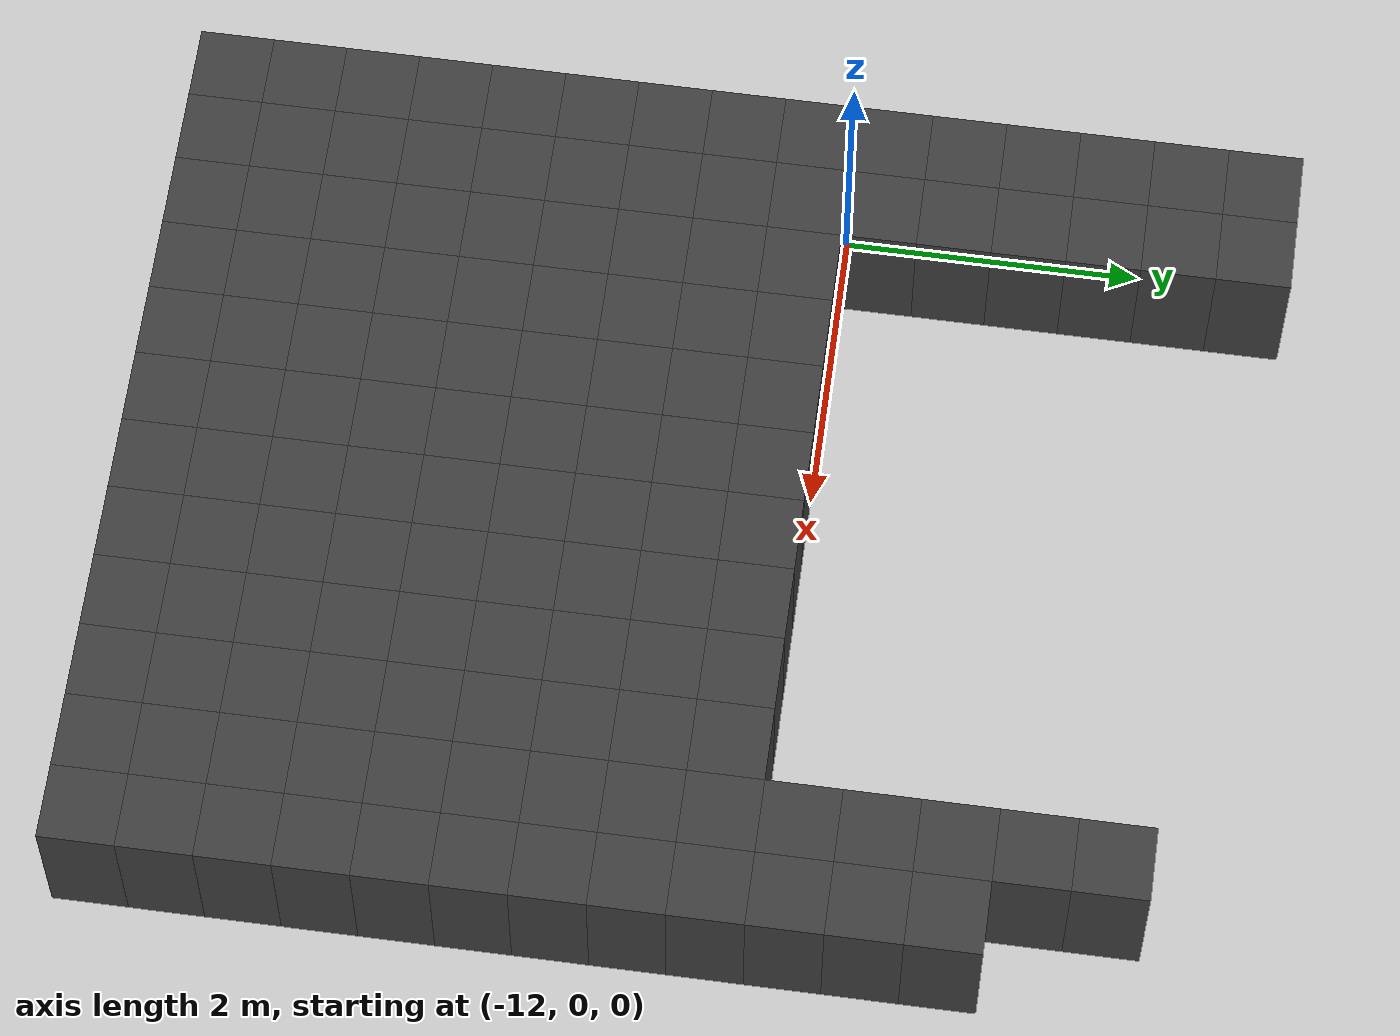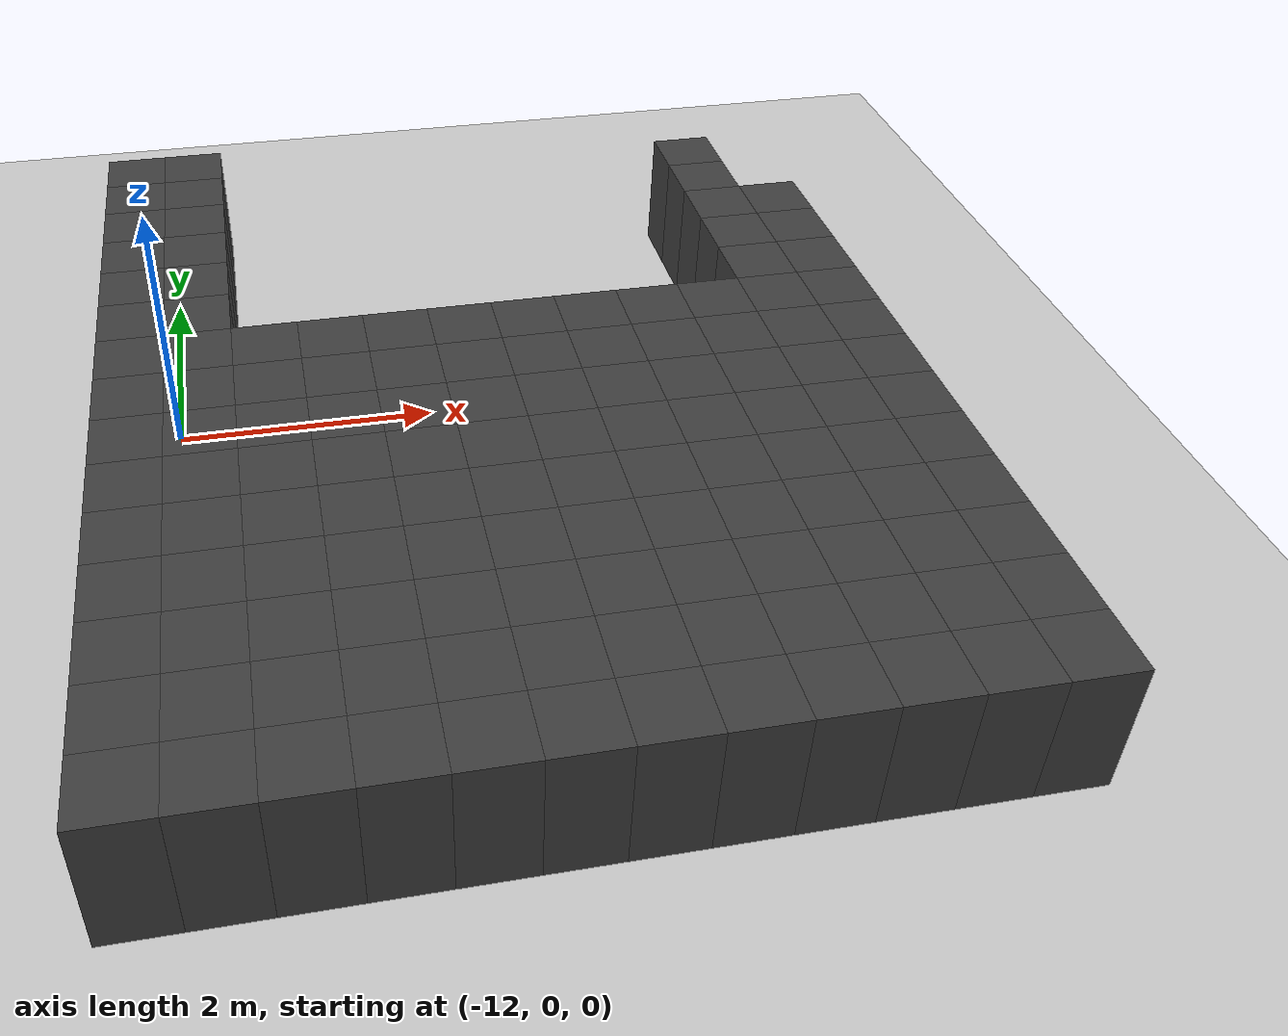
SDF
<sdf version="1.7">
 <world name="map_14735">
  <model name="ground_plane">
   <static>true</static>
   <link name="link">
    <collision name="collision">
     <geometry><plane><normal>0 0 1</normal><size>200 200</size></plane></geometry>
    </collision>
    <visual name="visual">
     <geometry><plane><normal>0 0 1</normal><size>200 200</size></plane></geometry>
     <material><ambient>0.8 0.8 0.8 1</ambient><diffuse>0.8 0.8 0.8 1</diffuse></material>
    </visual>
   </link>
  </model>
  <model name="maze_environment">
   <static>true</static>
   <link name="wall_590">
    <pose>-12.250 2.750 0.500 0 0 0</pose>
    <collision name="col"><geometry><box><size>0.5 0.5 1.0</size></box></geometry></collision>
    <visual name="vis">
     <geometry><box><size>0.5 0.5 1.0</size></box></geometry>
     <material><ambient>0.15 0.15 0.15 1</ambient><diffuse>0.25 0.25 0.25 1</diffuse></material>
    </visual>
   </link>
   <link name="wall_591">
    <pose>-11.750 2.750 0.500 0 0 0</pose>
    <collision name="col"><geometry><box><size>0.5 0.5 1.0</size></box></geometry></collision>
    <visual name="vis">
     <geometry><box><size>0.5 0.5 1.0</size></box></geometry>
     <material><ambient>0.15 0.15 0.15 1</ambient><diffuse>0.25 0.25 0.25 1</diffuse></material>
    </visual>
   </link>
   <link name="wall_618">
    <pose>-12.250 2.250 0.500 0 0 0</pose>
    <collision name="col"><geometry><box><size>0.5 0.5 1.0</size></box></geometry></collision>
    <visual name="vis">
     <geometry><box><size>0.5 0.5 1.0</size></box></geometry>
     <material><ambient>0.15 0.15 0.15 1</ambient><diffuse>0.25 0.25 0.25 1</diffuse></material>
    </visual>
   </link>
   <link name="wall_619">
    <pose>-11.750 2.250 0.500 0 0 0</pose>
    <collision name="col"><geometry><box><size>0.5 0.5 1.0</size></box></geometry></collision>
    <visual name="vis">
     <geometry><box><size>0.5 0.5 1.0</size></box></geometry>
     <material><ambient>0.15 0.15 0.15 1</ambient><diffuse>0.25 0.25 0.25 1</diffuse></material>
    </visual>
   </link>
   <link name="wall_620">
    <pose>-7.250 2.250 0.500 0 0 0</pose>
    <collision name="col"><geometry><box><size>0.5 0.5 1.0</size></box></geometry></collision>
    <visual name="vis">
     <geometry><box><size>0.5 0.5 1.0</size></box></geometry>
     <material><ambient>0.15 0.15 0.15 1</ambient><diffuse>0.25 0.25 0.25 1</diffuse></material>
    </visual>
   </link>
   <link name="wall_637">
    <pose>-12.250 1.750 0.500 0 0 0</pose>
    <collision name="col"><geometry><box><size>0.5 0.5 1.0</size></box></geometry></collision>
    <visual name="vis">
     <geometry><box><size>0.5 0.5 1.0</size></box></geometry>
     <material><ambient>0.15 0.15 0.15 1</ambient><diffuse>0.25 0.25 0.25 1</diffuse></material>
    </visual>
   </link>
   <link name="wall_638">
    <pose>-11.750 1.750 0.500 0 0 0</pose>
    <collision name="col"><geometry><box><size>0.5 0.5 1.0</size></box></geometry></collision>
    <visual name="vis">
     <geometry><box><size>0.5 0.5 1.0</size></box></geometry>
     <material><ambient>0.15 0.15 0.15 1</ambient><diffuse>0.25 0.25 0.25 1</diffuse></material>
    </visual>
   </link>
   <link name="wall_639">
    <pose>-7.250 1.750 0.500 0 0 0</pose>
    <collision name="col"><geometry><box><size>0.5 0.5 1.0</size></box></geometry></collision>
    <visual name="vis">
     <geometry><box><size>0.5 0.5 1.0</size></box></geometry>
     <material><ambient>0.15 0.15 0.15 1</ambient><diffuse>0.25 0.25 0.25 1</diffuse></material>
    </visual>
   </link>
   <link name="wall_663">
    <pose>-12.250 1.250 0.500 0 0 0</pose>
    <collision name="col"><geometry><box><size>0.5 0.5 1.0</size></box></geometry></collision>
    <visual name="vis">
     <geometry><box><size>0.5 0.5 1.0</size></box></geometry>
     <material><ambient>0.15 0.15 0.15 1</ambient><diffuse>0.25 0.25 0.25 1</diffuse></material>
    </visual>
   </link>
   <link name="wall_664">
    <pose>-11.750 1.250 0.500 0 0 0</pose>
    <collision name="col"><geometry><box><size>0.5 0.5 1.0</size></box></geometry></collision>
    <visual name="vis">
     <geometry><box><size>0.5 0.5 1.0</size></box></geometry>
     <material><ambient>0.15 0.15 0.15 1</ambient><diffuse>0.25 0.25 0.25 1</diffuse></material>
    </visual>
   </link>
   <link name="wall_665">
    <pose>-7.250 1.250 0.500 0 0 0</pose>
    <collision name="col"><geometry><box><size>0.5 0.5 1.0</size></box></geometry></collision>
    <visual name="vis">
     <geometry><box><size>0.5 0.5 1.0</size></box></geometry>
     <material><ambient>0.15 0.15 0.15 1</ambient><diffuse>0.25 0.25 0.25 1</diffuse></material>
    </visual>
   </link>
   <link name="wall_666">
    <pose>-6.750 1.250 0.500 0 0 0</pose>
    <collision name="col"><geometry><box><size>0.5 0.5 1.0</size></box></geometry></collision>
    <visual name="vis">
     <geometry><box><size>0.5 0.5 1.0</size></box></geometry>
     <material><ambient>0.15 0.15 0.15 1</ambient><diffuse>0.25 0.25 0.25 1</diffuse></material>
    </visual>
   </link>
   <link name="wall_689">
    <pose>-12.250 0.750 0.500 0 0 0</pose>
    <collision name="col"><geometry><box><size>0.5 0.5 1.0</size></box></geometry></collision>
    <visual name="vis">
     <geometry><box><size>0.5 0.5 1.0</size></box></geometry>
     <material><ambient>0.15 0.15 0.15 1</ambient><diffuse>0.25 0.25 0.25 1</diffuse></material>
    </visual>
   </link>
   <link name="wall_690">
    <pose>-11.750 0.750 0.500 0 0 0</pose>
    <collision name="col"><geometry><box><size>0.5 0.5 1.0</size></box></geometry></collision>
    <visual name="vis">
     <geometry><box><size>0.5 0.5 1.0</size></box></geometry>
     <material><ambient>0.15 0.15 0.15 1</ambient><diffuse>0.25 0.25 0.25 1</diffuse></material>
    </visual>
   </link>
   <link name="wall_691">
    <pose>-7.250 0.750 0.500 0 0 0</pose>
    <collision name="col"><geometry><box><size>0.5 0.5 1.0</size></box></geometry></collision>
    <visual name="vis">
     <geometry><box><size>0.5 0.5 1.0</size></box></geometry>
     <material><ambient>0.15 0.15 0.15 1</ambient><diffuse>0.25 0.25 0.25 1</diffuse></material>
    </visual>
   </link>
   <link name="wall_692">
    <pose>-6.750 0.750 0.500 0 0 0</pose>
    <collision name="col"><geometry><box><size>0.5 0.5 1.0</size></box></geometry></collision>
    <visual name="vis">
     <geometry><box><size>0.5 0.5 1.0</size></box></geometry>
     <material><ambient>0.15 0.15 0.15 1</ambient><diffuse>0.25 0.25 0.25 1</diffuse></material>
    </visual>
   </link>
   <link name="wall_714">
    <pose>-12.250 0.250 0.500 0 0 0</pose>
    <collision name="col"><geometry><box><size>0.5 0.5 1.0</size></box></geometry></collision>
    <visual name="vis">
     <geometry><box><size>0.5 0.5 1.0</size></box></geometry>
     <material><ambient>0.15 0.15 0.15 1</ambient><diffuse>0.25 0.25 0.25 1</diffuse></material>
    </visual>
   </link>
   <link name="wall_715">
    <pose>-11.750 0.250 0.500 0 0 0</pose>
    <collision name="col"><geometry><box><size>0.5 0.5 1.0</size></box></geometry></collision>
    <visual name="vis">
     <geometry><box><size>0.5 0.5 1.0</size></box></geometry>
     <material><ambient>0.15 0.15 0.15 1</ambient><diffuse>0.25 0.25 0.25 1</diffuse></material>
    </visual>
   </link>
   <link name="wall_716">
    <pose>-7.250 0.250 0.500 0 0 0</pose>
    <collision name="col"><geometry><box><size>0.5 0.5 1.0</size></box></geometry></collision>
    <visual name="vis">
     <geometry><box><size>0.5 0.5 1.0</size></box></geometry>
     <material><ambient>0.15 0.15 0.15 1</ambient><diffuse>0.25 0.25 0.25 1</diffuse></material>
    </visual>
   </link>
   <link name="wall_717">
    <pose>-6.750 0.250 0.500 0 0 0</pose>
    <collision name="col"><geometry><box><size>0.5 0.5 1.0</size></box></geometry></collision>
    <visual name="vis">
     <geometry><box><size>0.5 0.5 1.0</size></box></geometry>
     <material><ambient>0.15 0.15 0.15 1</ambient><diffuse>0.25 0.25 0.25 1</diffuse></material>
    </visual>
   </link>
   <link name="wall_746">
    <pose>-12.250 -0.250 0.500 0 0 0</pose>
    <collision name="col"><geometry><box><size>0.5 0.5 1.0</size></box></geometry></collision>
    <visual name="vis">
     <geometry><box><size>0.5 0.5 1.0</size></box></geometry>
     <material><ambient>0.15 0.15 0.15 1</ambient><diffuse>0.25 0.25 0.25 1</diffuse></material>
    </visual>
   </link>
   <link name="wall_747">
    <pose>-11.750 -0.250 0.500 0 0 0</pose>
    <collision name="col"><geometry><box><size>0.5 0.5 1.0</size></box></geometry></collision>
    <visual name="vis">
     <geometry><box><size>0.5 0.5 1.0</size></box></geometry>
     <material><ambient>0.15 0.15 0.15 1</ambient><diffuse>0.25 0.25 0.25 1</diffuse></material>
    </visual>
   </link>
   <link name="wall_748">
    <pose>-11.250 -0.250 0.500 0 0 0</pose>
    <collision name="col"><geometry><box><size>0.5 0.5 1.0</size></box></geometry></collision>
    <visual name="vis">
     <geometry><box><size>0.5 0.5 1.0</size></box></geometry>
     <material><ambient>0.15 0.15 0.15 1</ambient><diffuse>0.25 0.25 0.25 1</diffuse></material>
    </visual>
   </link>
   <link name="wall_749">
    <pose>-10.750 -0.250 0.500 0 0 0</pose>
    <collision name="col"><geometry><box><size>0.5 0.5 1.0</size></box></geometry></collision>
    <visual name="vis">
     <geometry><box><size>0.5 0.5 1.0</size></box></geometry>
     <material><ambient>0.15 0.15 0.15 1</ambient><diffuse>0.25 0.25 0.25 1</diffuse></material>
    </visual>
   </link>
   <link name="wall_750">
    <pose>-10.250 -0.250 0.500 0 0 0</pose>
    <collision name="col"><geometry><box><size>0.5 0.5 1.0</size></box></geometry></collision>
    <visual name="vis">
     <geometry><box><size>0.5 0.5 1.0</size></box></geometry>
     <material><ambient>0.15 0.15 0.15 1</ambient><diffuse>0.25 0.25 0.25 1</diffuse></material>
    </visual>
   </link>
   <link name="wall_751">
    <pose>-9.750 -0.250 0.500 0 0 0</pose>
    <collision name="col"><geometry><box><size>0.5 0.5 1.0</size></box></geometry></collision>
    <visual name="vis">
     <geometry><box><size>0.5 0.5 1.0</size></box></geometry>
     <material><ambient>0.15 0.15 0.15 1</ambient><diffuse>0.25 0.25 0.25 1</diffuse></material>
    </visual>
   </link>
   <link name="wall_752">
    <pose>-9.250 -0.250 0.500 0 0 0</pose>
    <collision name="col"><geometry><box><size>0.5 0.5 1.0</size></box></geometry></collision>
    <visual name="vis">
     <geometry><box><size>0.5 0.5 1.0</size></box></geometry>
     <material><ambient>0.15 0.15 0.15 1</ambient><diffuse>0.25 0.25 0.25 1</diffuse></material>
    </visual>
   </link>
   <link name="wall_753">
    <pose>-8.750 -0.250 0.500 0 0 0</pose>
    <collision name="col"><geometry><box><size>0.5 0.5 1.0</size></box></geometry></collision>
    <visual name="vis">
     <geometry><box><size>0.5 0.5 1.0</size></box></geometry>
     <material><ambient>0.15 0.15 0.15 1</ambient><diffuse>0.25 0.25 0.25 1</diffuse></material>
    </visual>
   </link>
   <link name="wall_754">
    <pose>-8.250 -0.250 0.500 0 0 0</pose>
    <collision name="col"><geometry><box><size>0.5 0.5 1.0</size></box></geometry></collision>
    <visual name="vis">
     <geometry><box><size>0.5 0.5 1.0</size></box></geometry>
     <material><ambient>0.15 0.15 0.15 1</ambient><diffuse>0.25 0.25 0.25 1</diffuse></material>
    </visual>
   </link>
   <link name="wall_755">
    <pose>-7.750 -0.250 0.500 0 0 0</pose>
    <collision name="col"><geometry><box><size>0.5 0.5 1.0</size></box></geometry></collision>
    <visual name="vis">
     <geometry><box><size>0.5 0.5 1.0</size></box></geometry>
     <material><ambient>0.15 0.15 0.15 1</ambient><diffuse>0.25 0.25 0.25 1</diffuse></material>
    </visual>
   </link>
   <link name="wall_756">
    <pose>-7.250 -0.250 0.500 0 0 0</pose>
    <collision name="col"><geometry><box><size>0.5 0.5 1.0</size></box></geometry></collision>
    <visual name="vis">
     <geometry><box><size>0.5 0.5 1.0</size></box></geometry>
     <material><ambient>0.15 0.15 0.15 1</ambient><diffuse>0.25 0.25 0.25 1</diffuse></material>
    </visual>
   </link>
   <link name="wall_757">
    <pose>-6.750 -0.250 0.500 0 0 0</pose>
    <collision name="col"><geometry><box><size>0.5 0.5 1.0</size></box></geometry></collision>
    <visual name="vis">
     <geometry><box><size>0.5 0.5 1.0</size></box></geometry>
     <material><ambient>0.15 0.15 0.15 1</ambient><diffuse>0.25 0.25 0.25 1</diffuse></material>
    </visual>
   </link>
   <link name="wall_782">
    <pose>-12.250 -0.750 0.500 0 0 0</pose>
    <collision name="col"><geometry><box><size>0.5 0.5 1.0</size></box></geometry></collision>
    <visual name="vis">
     <geometry><box><size>0.5 0.5 1.0</size></box></geometry>
     <material><ambient>0.15 0.15 0.15 1</ambient><diffuse>0.25 0.25 0.25 1</diffuse></material>
    </visual>
   </link>
   <link name="wall_783">
    <pose>-11.750 -0.750 0.500 0 0 0</pose>
    <collision name="col"><geometry><box><size>0.5 0.5 1.0</size></box></geometry></collision>
    <visual name="vis">
     <geometry><box><size>0.5 0.5 1.0</size></box></geometry>
     <material><ambient>0.15 0.15 0.15 1</ambient><diffuse>0.25 0.25 0.25 1</diffuse></material>
    </visual>
   </link>
   <link name="wall_784">
    <pose>-11.250 -0.750 0.500 0 0 0</pose>
    <collision name="col"><geometry><box><size>0.5 0.5 1.0</size></box></geometry></collision>
    <visual name="vis">
     <geometry><box><size>0.5 0.5 1.0</size></box></geometry>
     <material><ambient>0.15 0.15 0.15 1</ambient><diffuse>0.25 0.25 0.25 1</diffuse></material>
    </visual>
   </link>
   <link name="wall_785">
    <pose>-10.750 -0.750 0.500 0 0 0</pose>
    <collision name="col"><geometry><box><size>0.5 0.5 1.0</size></box></geometry></collision>
    <visual name="vis">
     <geometry><box><size>0.5 0.5 1.0</size></box></geometry>
     <material><ambient>0.15 0.15 0.15 1</ambient><diffuse>0.25 0.25 0.25 1</diffuse></material>
    </visual>
   </link>
   <link name="wall_786">
    <pose>-10.250 -0.750 0.500 0 0 0</pose>
    <collision name="col"><geometry><box><size>0.5 0.5 1.0</size></box></geometry></collision>
    <visual name="vis">
     <geometry><box><size>0.5 0.5 1.0</size></box></geometry>
     <material><ambient>0.15 0.15 0.15 1</ambient><diffuse>0.25 0.25 0.25 1</diffuse></material>
    </visual>
   </link>
   <link name="wall_787">
    <pose>-9.750 -0.750 0.500 0 0 0</pose>
    <collision name="col"><geometry><box><size>0.5 0.5 1.0</size></box></geometry></collision>
    <visual name="vis">
     <geometry><box><size>0.5 0.5 1.0</size></box></geometry>
     <material><ambient>0.15 0.15 0.15 1</ambient><diffuse>0.25 0.25 0.25 1</diffuse></material>
    </visual>
   </link>
   <link name="wall_788">
    <pose>-9.250 -0.750 0.500 0 0 0</pose>
    <collision name="col"><geometry><box><size>0.5 0.5 1.0</size></box></geometry></collision>
    <visual name="vis">
     <geometry><box><size>0.5 0.5 1.0</size></box></geometry>
     <material><ambient>0.15 0.15 0.15 1</ambient><diffuse>0.25 0.25 0.25 1</diffuse></material>
    </visual>
   </link>
   <link name="wall_789">
    <pose>-8.750 -0.750 0.500 0 0 0</pose>
    <collision name="col"><geometry><box><size>0.5 0.5 1.0</size></box></geometry></collision>
    <visual name="vis">
     <geometry><box><size>0.5 0.5 1.0</size></box></geometry>
     <material><ambient>0.15 0.15 0.15 1</ambient><diffuse>0.25 0.25 0.25 1</diffuse></material>
    </visual>
   </link>
   <link name="wall_790">
    <pose>-8.250 -0.750 0.500 0 0 0</pose>
    <collision name="col"><geometry><box><size>0.5 0.5 1.0</size></box></geometry></collision>
    <visual name="vis">
     <geometry><box><size>0.5 0.5 1.0</size></box></geometry>
     <material><ambient>0.15 0.15 0.15 1</ambient><diffuse>0.25 0.25 0.25 1</diffuse></material>
    </visual>
   </link>
   <link name="wall_791">
    <pose>-7.750 -0.750 0.500 0 0 0</pose>
    <collision name="col"><geometry><box><size>0.5 0.5 1.0</size></box></geometry></collision>
    <visual name="vis">
     <geometry><box><size>0.5 0.5 1.0</size></box></geometry>
     <material><ambient>0.15 0.15 0.15 1</ambient><diffuse>0.25 0.25 0.25 1</diffuse></material>
    </visual>
   </link>
   <link name="wall_792">
    <pose>-7.250 -0.750 0.500 0 0 0</pose>
    <collision name="col"><geometry><box><size>0.5 0.5 1.0</size></box></geometry></collision>
    <visual name="vis">
     <geometry><box><size>0.5 0.5 1.0</size></box></geometry>
     <material><ambient>0.15 0.15 0.15 1</ambient><diffuse>0.25 0.25 0.25 1</diffuse></material>
    </visual>
   </link>
   <link name="wall_793">
    <pose>-6.750 -0.750 0.500 0 0 0</pose>
    <collision name="col"><geometry><box><size>0.5 0.5 1.0</size></box></geometry></collision>
    <visual name="vis">
     <geometry><box><size>0.5 0.5 1.0</size></box></geometry>
     <material><ambient>0.15 0.15 0.15 1</ambient><diffuse>0.25 0.25 0.25 1</diffuse></material>
    </visual>
   </link>
   <link name="wall_818">
    <pose>-12.250 -1.250 0.500 0 0 0</pose>
    <collision name="col"><geometry><box><size>0.5 0.5 1.0</size></box></geometry></collision>
    <visual name="vis">
     <geometry><box><size>0.5 0.5 1.0</size></box></geometry>
     <material><ambient>0.15 0.15 0.15 1</ambient><diffuse>0.25 0.25 0.25 1</diffuse></material>
    </visual>
   </link>
   <link name="wall_819">
    <pose>-11.750 -1.250 0.500 0 0 0</pose>
    <collision name="col"><geometry><box><size>0.5 0.5 1.0</size></box></geometry></collision>
    <visual name="vis">
     <geometry><box><size>0.5 0.5 1.0</size></box></geometry>
     <material><ambient>0.15 0.15 0.15 1</ambient><diffuse>0.25 0.25 0.25 1</diffuse></material>
    </visual>
   </link>
   <link name="wall_820">
    <pose>-11.250 -1.250 0.500 0 0 0</pose>
    <collision name="col"><geometry><box><size>0.5 0.5 1.0</size></box></geometry></collision>
    <visual name="vis">
     <geometry><box><size>0.5 0.5 1.0</size></box></geometry>
     <material><ambient>0.15 0.15 0.15 1</ambient><diffuse>0.25 0.25 0.25 1</diffuse></material>
    </visual>
   </link>
   <link name="wall_821">
    <pose>-10.750 -1.250 0.500 0 0 0</pose>
    <collision name="col"><geometry><box><size>0.5 0.5 1.0</size></box></geometry></collision>
    <visual name="vis">
     <geometry><box><size>0.5 0.5 1.0</size></box></geometry>
     <material><ambient>0.15 0.15 0.15 1</ambient><diffuse>0.25 0.25 0.25 1</diffuse></material>
    </visual>
   </link>
   <link name="wall_822">
    <pose>-10.250 -1.250 0.500 0 0 0</pose>
    <collision name="col"><geometry><box><size>0.5 0.5 1.0</size></box></geometry></collision>
    <visual name="vis">
     <geometry><box><size>0.5 0.5 1.0</size></box></geometry>
     <material><ambient>0.15 0.15 0.15 1</ambient><diffuse>0.25 0.25 0.25 1</diffuse></material>
    </visual>
   </link>
   <link name="wall_823">
    <pose>-9.750 -1.250 0.500 0 0 0</pose>
    <collision name="col"><geometry><box><size>0.5 0.5 1.0</size></box></geometry></collision>
    <visual name="vis">
     <geometry><box><size>0.5 0.5 1.0</size></box></geometry>
     <material><ambient>0.15 0.15 0.15 1</ambient><diffuse>0.25 0.25 0.25 1</diffuse></material>
    </visual>
   </link>
   <link name="wall_824">
    <pose>-9.250 -1.250 0.500 0 0 0</pose>
    <collision name="col"><geometry><box><size>0.5 0.5 1.0</size></box></geometry></collision>
    <visual name="vis">
     <geometry><box><size>0.5 0.5 1.0</size></box></geometry>
     <material><ambient>0.15 0.15 0.15 1</ambient><diffuse>0.25 0.25 0.25 1</diffuse></material>
    </visual>
   </link>
   <link name="wall_825">
    <pose>-8.750 -1.250 0.500 0 0 0</pose>
    <collision name="col"><geometry><box><size>0.5 0.5 1.0</size></box></geometry></collision>
    <visual name="vis">
     <geometry><box><size>0.5 0.5 1.0</size></box></geometry>
     <material><ambient>0.15 0.15 0.15 1</ambient><diffuse>0.25 0.25 0.25 1</diffuse></material>
    </visual>
   </link>
   <link name="wall_826">
    <pose>-8.250 -1.250 0.500 0 0 0</pose>
    <collision name="col"><geometry><box><size>0.5 0.5 1.0</size></box></geometry></collision>
    <visual name="vis">
     <geometry><box><size>0.5 0.5 1.0</size></box></geometry>
     <material><ambient>0.15 0.15 0.15 1</ambient><diffuse>0.25 0.25 0.25 1</diffuse></material>
    </visual>
   </link>
   <link name="wall_827">
    <pose>-7.750 -1.250 0.500 0 0 0</pose>
    <collision name="col"><geometry><box><size>0.5 0.5 1.0</size></box></geometry></collision>
    <visual name="vis">
     <geometry><box><size>0.5 0.5 1.0</size></box></geometry>
     <material><ambient>0.15 0.15 0.15 1</ambient><diffuse>0.25 0.25 0.25 1</diffuse></material>
    </visual>
   </link>
   <link name="wall_828">
    <pose>-7.250 -1.250 0.500 0 0 0</pose>
    <collision name="col"><geometry><box><size>0.5 0.5 1.0</size></box></geometry></collision>
    <visual name="vis">
     <geometry><box><size>0.5 0.5 1.0</size></box></geometry>
     <material><ambient>0.15 0.15 0.15 1</ambient><diffuse>0.25 0.25 0.25 1</diffuse></material>
    </visual>
   </link>
   <link name="wall_829">
    <pose>-6.750 -1.250 0.500 0 0 0</pose>
    <collision name="col"><geometry><box><size>0.5 0.5 1.0</size></box></geometry></collision>
    <visual name="vis">
     <geometry><box><size>0.5 0.5 1.0</size></box></geometry>
     <material><ambient>0.15 0.15 0.15 1</ambient><diffuse>0.25 0.25 0.25 1</diffuse></material>
    </visual>
   </link>
   <link name="wall_854">
    <pose>-12.250 -1.750 0.500 0 0 0</pose>
    <collision name="col"><geometry><box><size>0.5 0.5 1.0</size></box></geometry></collision>
    <visual name="vis">
     <geometry><box><size>0.5 0.5 1.0</size></box></geometry>
     <material><ambient>0.15 0.15 0.15 1</ambient><diffuse>0.25 0.25 0.25 1</diffuse></material>
    </visual>
   </link>
   <link name="wall_855">
    <pose>-11.750 -1.750 0.500 0 0 0</pose>
    <collision name="col"><geometry><box><size>0.5 0.5 1.0</size></box></geometry></collision>
    <visual name="vis">
     <geometry><box><size>0.5 0.5 1.0</size></box></geometry>
     <material><ambient>0.15 0.15 0.15 1</ambient><diffuse>0.25 0.25 0.25 1</diffuse></material>
    </visual>
   </link>
   <link name="wall_856">
    <pose>-11.250 -1.750 0.500 0 0 0</pose>
    <collision name="col"><geometry><box><size>0.5 0.5 1.0</size></box></geometry></collision>
    <visual name="vis">
     <geometry><box><size>0.5 0.5 1.0</size></box></geometry>
     <material><ambient>0.15 0.15 0.15 1</ambient><diffuse>0.25 0.25 0.25 1</diffuse></material>
    </visual>
   </link>
   <link name="wall_857">
    <pose>-10.750 -1.750 0.500 0 0 0</pose>
    <collision name="col"><geometry><box><size>0.5 0.5 1.0</size></box></geometry></collision>
    <visual name="vis">
     <geometry><box><size>0.5 0.5 1.0</size></box></geometry>
     <material><ambient>0.15 0.15 0.15 1</ambient><diffuse>0.25 0.25 0.25 1</diffuse></material>
    </visual>
   </link>
   <link name="wall_858">
    <pose>-10.250 -1.750 0.500 0 0 0</pose>
    <collision name="col"><geometry><box><size>0.5 0.5 1.0</size></box></geometry></collision>
    <visual name="vis">
     <geometry><box><size>0.5 0.5 1.0</size></box></geometry>
     <material><ambient>0.15 0.15 0.15 1</ambient><diffuse>0.25 0.25 0.25 1</diffuse></material>
    </visual>
   </link>
   <link name="wall_859">
    <pose>-9.750 -1.750 0.500 0 0 0</pose>
    <collision name="col"><geometry><box><size>0.5 0.5 1.0</size></box></geometry></collision>
    <visual name="vis">
     <geometry><box><size>0.5 0.5 1.0</size></box></geometry>
     <material><ambient>0.15 0.15 0.15 1</ambient><diffuse>0.25 0.25 0.25 1</diffuse></material>
    </visual>
   </link>
   <link name="wall_860">
    <pose>-9.250 -1.750 0.500 0 0 0</pose>
    <collision name="col"><geometry><box><size>0.5 0.5 1.0</size></box></geometry></collision>
    <visual name="vis">
     <geometry><box><size>0.5 0.5 1.0</size></box></geometry>
     <material><ambient>0.15 0.15 0.15 1</ambient><diffuse>0.25 0.25 0.25 1</diffuse></material>
    </visual>
   </link>
   <link name="wall_861">
    <pose>-8.750 -1.750 0.500 0 0 0</pose>
    <collision name="col"><geometry><box><size>0.5 0.5 1.0</size></box></geometry></collision>
    <visual name="vis">
     <geometry><box><size>0.5 0.5 1.0</size></box></geometry>
     <material><ambient>0.15 0.15 0.15 1</ambient><diffuse>0.25 0.25 0.25 1</diffuse></material>
    </visual>
   </link>
   <link name="wall_862">
    <pose>-8.250 -1.750 0.500 0 0 0</pose>
    <collision name="col"><geometry><box><size>0.5 0.5 1.0</size></box></geometry></collision>
    <visual name="vis">
     <geometry><box><size>0.5 0.5 1.0</size></box></geometry>
     <material><ambient>0.15 0.15 0.15 1</ambient><diffuse>0.25 0.25 0.25 1</diffuse></material>
    </visual>
   </link>
   <link name="wall_863">
    <pose>-7.750 -1.750 0.500 0 0 0</pose>
    <collision name="col"><geometry><box><size>0.5 0.5 1.0</size></box></geometry></collision>
    <visual name="vis">
     <geometry><box><size>0.5 0.5 1.0</size></box></geometry>
     <material><ambient>0.15 0.15 0.15 1</ambient><diffuse>0.25 0.25 0.25 1</diffuse></material>
    </visual>
   </link>
   <link name="wall_864">
    <pose>-7.250 -1.750 0.500 0 0 0</pose>
    <collision name="col"><geometry><box><size>0.5 0.5 1.0</size></box></geometry></collision>
    <visual name="vis">
     <geometry><box><size>0.5 0.5 1.0</size></box></geometry>
     <material><ambient>0.15 0.15 0.15 1</ambient><diffuse>0.25 0.25 0.25 1</diffuse></material>
    </visual>
   </link>
   <link name="wall_865">
    <pose>-6.750 -1.750 0.500 0 0 0</pose>
    <collision name="col"><geometry><box><size>0.5 0.5 1.0</size></box></geometry></collision>
    <visual name="vis">
     <geometry><box><size>0.5 0.5 1.0</size></box></geometry>
     <material><ambient>0.15 0.15 0.15 1</ambient><diffuse>0.25 0.25 0.25 1</diffuse></material>
    </visual>
   </link>
   <link name="wall_894">
    <pose>-12.250 -2.250 0.500 0 0 0</pose>
    <collision name="col"><geometry><box><size>0.5 0.5 1.0</size></box></geometry></collision>
    <visual name="vis">
     <geometry><box><size>0.5 0.5 1.0</size></box></geometry>
     <material><ambient>0.15 0.15 0.15 1</ambient><diffuse>0.25 0.25 0.25 1</diffuse></material>
    </visual>
   </link>
   <link name="wall_895">
    <pose>-11.750 -2.250 0.500 0 0 0</pose>
    <collision name="col"><geometry><box><size>0.5 0.5 1.0</size></box></geometry></collision>
    <visual name="vis">
     <geometry><box><size>0.5 0.5 1.0</size></box></geometry>
     <material><ambient>0.15 0.15 0.15 1</ambient><diffuse>0.25 0.25 0.25 1</diffuse></material>
    </visual>
   </link>
   <link name="wall_896">
    <pose>-11.250 -2.250 0.500 0 0 0</pose>
    <collision name="col"><geometry><box><size>0.5 0.5 1.0</size></box></geometry></collision>
    <visual name="vis">
     <geometry><box><size>0.5 0.5 1.0</size></box></geometry>
     <material><ambient>0.15 0.15 0.15 1</ambient><diffuse>0.25 0.25 0.25 1</diffuse></material>
    </visual>
   </link>
   <link name="wall_897">
    <pose>-10.750 -2.250 0.500 0 0 0</pose>
    <collision name="col"><geometry><box><size>0.5 0.5 1.0</size></box></geometry></collision>
    <visual name="vis">
     <geometry><box><size>0.5 0.5 1.0</size></box></geometry>
     <material><ambient>0.15 0.15 0.15 1</ambient><diffuse>0.25 0.25 0.25 1</diffuse></material>
    </visual>
   </link>
   <link name="wall_898">
    <pose>-10.250 -2.250 0.500 0 0 0</pose>
    <collision name="col"><geometry><box><size>0.5 0.5 1.0</size></box></geometry></collision>
    <visual name="vis">
     <geometry><box><size>0.5 0.5 1.0</size></box></geometry>
     <material><ambient>0.15 0.15 0.15 1</ambient><diffuse>0.25 0.25 0.25 1</diffuse></material>
    </visual>
   </link>
   <link name="wall_899">
    <pose>-9.750 -2.250 0.500 0 0 0</pose>
    <collision name="col"><geometry><box><size>0.5 0.5 1.0</size></box></geometry></collision>
    <visual name="vis">
     <geometry><box><size>0.5 0.5 1.0</size></box></geometry>
     <material><ambient>0.15 0.15 0.15 1</ambient><diffuse>0.25 0.25 0.25 1</diffuse></material>
    </visual>
   </link>
   <link name="wall_900">
    <pose>-9.250 -2.250 0.500 0 0 0</pose>
    <collision name="col"><geometry><box><size>0.5 0.5 1.0</size></box></geometry></collision>
    <visual name="vis">
     <geometry><box><size>0.5 0.5 1.0</size></box></geometry>
     <material><ambient>0.15 0.15 0.15 1</ambient><diffuse>0.25 0.25 0.25 1</diffuse></material>
    </visual>
   </link>
   <link name="wall_901">
    <pose>-8.750 -2.250 0.500 0 0 0</pose>
    <collision name="col"><geometry><box><size>0.5 0.5 1.0</size></box></geometry></collision>
    <visual name="vis">
     <geometry><box><size>0.5 0.5 1.0</size></box></geometry>
     <material><ambient>0.15 0.15 0.15 1</ambient><diffuse>0.25 0.25 0.25 1</diffuse></material>
    </visual>
   </link>
   <link name="wall_902">
    <pose>-8.250 -2.250 0.500 0 0 0</pose>
    <collision name="col"><geometry><box><size>0.5 0.5 1.0</size></box></geometry></collision>
    <visual name="vis">
     <geometry><box><size>0.5 0.5 1.0</size></box></geometry>
     <material><ambient>0.15 0.15 0.15 1</ambient><diffuse>0.25 0.25 0.25 1</diffuse></material>
    </visual>
   </link>
   <link name="wall_903">
    <pose>-7.750 -2.250 0.500 0 0 0</pose>
    <collision name="col"><geometry><box><size>0.5 0.5 1.0</size></box></geometry></collision>
    <visual name="vis">
     <geometry><box><size>0.5 0.5 1.0</size></box></geometry>
     <material><ambient>0.15 0.15 0.15 1</ambient><diffuse>0.25 0.25 0.25 1</diffuse></material>
    </visual>
   </link>
   <link name="wall_904">
    <pose>-7.250 -2.250 0.500 0 0 0</pose>
    <collision name="col"><geometry><box><size>0.5 0.5 1.0</size></box></geometry></collision>
    <visual name="vis">
     <geometry><box><size>0.5 0.5 1.0</size></box></geometry>
     <material><ambient>0.15 0.15 0.15 1</ambient><diffuse>0.25 0.25 0.25 1</diffuse></material>
    </visual>
   </link>
   <link name="wall_905">
    <pose>-6.750 -2.250 0.500 0 0 0</pose>
    <collision name="col"><geometry><box><size>0.5 0.5 1.0</size></box></geometry></collision>
    <visual name="vis">
     <geometry><box><size>0.5 0.5 1.0</size></box></geometry>
     <material><ambient>0.15 0.15 0.15 1</ambient><diffuse>0.25 0.25 0.25 1</diffuse></material>
    </visual>
   </link>
   <link name="wall_941">
    <pose>-12.250 -2.750 0.500 0 0 0</pose>
    <collision name="col"><geometry><box><size>0.5 0.5 1.0</size></box></geometry></collision>
    <visual name="vis">
     <geometry><box><size>0.5 0.5 1.0</size></box></geometry>
     <material><ambient>0.15 0.15 0.15 1</ambient><diffuse>0.25 0.25 0.25 1</diffuse></material>
    </visual>
   </link>
   <link name="wall_942">
    <pose>-11.750 -2.750 0.500 0 0 0</pose>
    <collision name="col"><geometry><box><size>0.5 0.5 1.0</size></box></geometry></collision>
    <visual name="vis">
     <geometry><box><size>0.5 0.5 1.0</size></box></geometry>
     <material><ambient>0.15 0.15 0.15 1</ambient><diffuse>0.25 0.25 0.25 1</diffuse></material>
    </visual>
   </link>
   <link name="wall_943">
    <pose>-11.250 -2.750 0.500 0 0 0</pose>
    <collision name="col"><geometry><box><size>0.5 0.5 1.0</size></box></geometry></collision>
    <visual name="vis">
     <geometry><box><size>0.5 0.5 1.0</size></box></geometry>
     <material><ambient>0.15 0.15 0.15 1</ambient><diffuse>0.25 0.25 0.25 1</diffuse></material>
    </visual>
   </link>
   <link name="wall_944">
    <pose>-10.750 -2.750 0.500 0 0 0</pose>
    <collision name="col"><geometry><box><size>0.5 0.5 1.0</size></box></geometry></collision>
    <visual name="vis">
     <geometry><box><size>0.5 0.5 1.0</size></box></geometry>
     <material><ambient>0.15 0.15 0.15 1</ambient><diffuse>0.25 0.25 0.25 1</diffuse></material>
    </visual>
   </link>
   <link name="wall_945">
    <pose>-10.250 -2.750 0.500 0 0 0</pose>
    <collision name="col"><geometry><box><size>0.5 0.5 1.0</size></box></geometry></collision>
    <visual name="vis">
     <geometry><box><size>0.5 0.5 1.0</size></box></geometry>
     <material><ambient>0.15 0.15 0.15 1</ambient><diffuse>0.25 0.25 0.25 1</diffuse></material>
    </visual>
   </link>
   <link name="wall_946">
    <pose>-9.750 -2.750 0.500 0 0 0</pose>
    <collision name="col"><geometry><box><size>0.5 0.5 1.0</size></box></geometry></collision>
    <visual name="vis">
     <geometry><box><size>0.5 0.5 1.0</size></box></geometry>
     <material><ambient>0.15 0.15 0.15 1</ambient><diffuse>0.25 0.25 0.25 1</diffuse></material>
    </visual>
   </link>
   <link name="wall_947">
    <pose>-9.250 -2.750 0.500 0 0 0</pose>
    <collision name="col"><geometry><box><size>0.5 0.5 1.0</size></box></geometry></collision>
    <visual name="vis">
     <geometry><box><size>0.5 0.5 1.0</size></box></geometry>
     <material><ambient>0.15 0.15 0.15 1</ambient><diffuse>0.25 0.25 0.25 1</diffuse></material>
    </visual>
   </link>
   <link name="wall_948">
    <pose>-8.750 -2.750 0.500 0 0 0</pose>
    <collision name="col"><geometry><box><size>0.5 0.5 1.0</size></box></geometry></collision>
    <visual name="vis">
     <geometry><box><size>0.5 0.5 1.0</size></box></geometry>
     <material><ambient>0.15 0.15 0.15 1</ambient><diffuse>0.25 0.25 0.25 1</diffuse></material>
    </visual>
   </link>
   <link name="wall_949">
    <pose>-8.250 -2.750 0.500 0 0 0</pose>
    <collision name="col"><geometry><box><size>0.5 0.5 1.0</size></box></geometry></collision>
    <visual name="vis">
     <geometry><box><size>0.5 0.5 1.0</size></box></geometry>
     <material><ambient>0.15 0.15 0.15 1</ambient><diffuse>0.25 0.25 0.25 1</diffuse></material>
    </visual>
   </link>
   <link name="wall_950">
    <pose>-7.750 -2.750 0.500 0 0 0</pose>
    <collision name="col"><geometry><box><size>0.5 0.5 1.0</size></box></geometry></collision>
    <visual name="vis">
     <geometry><box><size>0.5 0.5 1.0</size></box></geometry>
     <material><ambient>0.15 0.15 0.15 1</ambient><diffuse>0.25 0.25 0.25 1</diffuse></material>
    </visual>
   </link>
   <link name="wall_951">
    <pose>-7.250 -2.750 0.500 0 0 0</pose>
    <collision name="col"><geometry><box><size>0.5 0.5 1.0</size></box></geometry></collision>
    <visual name="vis">
     <geometry><box><size>0.5 0.5 1.0</size></box></geometry>
     <material><ambient>0.15 0.15 0.15 1</ambient><diffuse>0.25 0.25 0.25 1</diffuse></material>
    </visual>
   </link>
   <link name="wall_952">
    <pose>-6.750 -2.750 0.500 0 0 0</pose>
    <collision name="col"><geometry><box><size>0.5 0.5 1.0</size></box></geometry></collision>
    <visual name="vis">
     <geometry><box><size>0.5 0.5 1.0</size></box></geometry>
     <material><ambient>0.15 0.15 0.15 1</ambient><diffuse>0.25 0.25 0.25 1</diffuse></material>
    </visual>
   </link>
   <link name="wall_982">
    <pose>-12.250 -3.250 0.500 0 0 0</pose>
    <collision name="col"><geometry><box><size>0.5 0.5 1.0</size></box></geometry></collision>
    <visual name="vis">
     <geometry><box><size>0.5 0.5 1.0</size></box></geometry>
     <material><ambient>0.15 0.15 0.15 1</ambient><diffuse>0.25 0.25 0.25 1</diffuse></material>
    </visual>
   </link>
   <link name="wall_983">
    <pose>-11.750 -3.250 0.500 0 0 0</pose>
    <collision name="col"><geometry><box><size>0.5 0.5 1.0</size></box></geometry></collision>
    <visual name="vis">
     <geometry><box><size>0.5 0.5 1.0</size></box></geometry>
     <material><ambient>0.15 0.15 0.15 1</ambient><diffuse>0.25 0.25 0.25 1</diffuse></material>
    </visual>
   </link>
   <link name="wall_984">
    <pose>-11.250 -3.250 0.500 0 0 0</pose>
    <collision name="col"><geometry><box><size>0.5 0.5 1.0</size></box></geometry></collision>
    <visual name="vis">
     <geometry><box><size>0.5 0.5 1.0</size></box></geometry>
     <material><ambient>0.15 0.15 0.15 1</ambient><diffuse>0.25 0.25 0.25 1</diffuse></material>
    </visual>
   </link>
   <link name="wall_985">
    <pose>-10.750 -3.250 0.500 0 0 0</pose>
    <collision name="col"><geometry><box><size>0.5 0.5 1.0</size></box></geometry></collision>
    <visual name="vis">
     <geometry><box><size>0.5 0.5 1.0</size></box></geometry>
     <material><ambient>0.15 0.15 0.15 1</ambient><diffuse>0.25 0.25 0.25 1</diffuse></material>
    </visual>
   </link>
   <link name="wall_986">
    <pose>-10.250 -3.250 0.500 0 0 0</pose>
    <collision name="col"><geometry><box><size>0.5 0.5 1.0</size></box></geometry></collision>
    <visual name="vis">
     <geometry><box><size>0.5 0.5 1.0</size></box></geometry>
     <material><ambient>0.15 0.15 0.15 1</ambient><diffuse>0.25 0.25 0.25 1</diffuse></material>
    </visual>
   </link>
   <link name="wall_987">
    <pose>-9.750 -3.250 0.500 0 0 0</pose>
    <collision name="col"><geometry><box><size>0.5 0.5 1.0</size></box></geometry></collision>
    <visual name="vis">
     <geometry><box><size>0.5 0.5 1.0</size></box></geometry>
     <material><ambient>0.15 0.15 0.15 1</ambient><diffuse>0.25 0.25 0.25 1</diffuse></material>
    </visual>
   </link>
   <link name="wall_988">
    <pose>-9.250 -3.250 0.500 0 0 0</pose>
    <collision name="col"><geometry><box><size>0.5 0.5 1.0</size></box></geometry></collision>
    <visual name="vis">
     <geometry><box><size>0.5 0.5 1.0</size></box></geometry>
     <material><ambient>0.15 0.15 0.15 1</ambient><diffuse>0.25 0.25 0.25 1</diffuse></material>
    </visual>
   </link>
   <link name="wall_989">
    <pose>-8.750 -3.250 0.500 0 0 0</pose>
    <collision name="col"><geometry><box><size>0.5 0.5 1.0</size></box></geometry></collision>
    <visual name="vis">
     <geometry><box><size>0.5 0.5 1.0</size></box></geometry>
     <material><ambient>0.15 0.15 0.15 1</ambient><diffuse>0.25 0.25 0.25 1</diffuse></material>
    </visual>
   </link>
   <link name="wall_990">
    <pose>-8.250 -3.250 0.500 0 0 0</pose>
    <collision name="col"><geometry><box><size>0.5 0.5 1.0</size></box></geometry></collision>
    <visual name="vis">
     <geometry><box><size>0.5 0.5 1.0</size></box></geometry>
     <material><ambient>0.15 0.15 0.15 1</ambient><diffuse>0.25 0.25 0.25 1</diffuse></material>
    </visual>
   </link>
   <link name="wall_991">
    <pose>-7.750 -3.250 0.500 0 0 0</pose>
    <collision name="col"><geometry><box><size>0.5 0.5 1.0</size></box></geometry></collision>
    <visual name="vis">
     <geometry><box><size>0.5 0.5 1.0</size></box></geometry>
     <material><ambient>0.15 0.15 0.15 1</ambient><diffuse>0.25 0.25 0.25 1</diffuse></material>
    </visual>
   </link>
   <link name="wall_992">
    <pose>-7.250 -3.250 0.500 0 0 0</pose>
    <collision name="col"><geometry><box><size>0.5 0.5 1.0</size></box></geometry></collision>
    <visual name="vis">
     <geometry><box><size>0.5 0.5 1.0</size></box></geometry>
     <material><ambient>0.15 0.15 0.15 1</ambient><diffuse>0.25 0.25 0.25 1</diffuse></material>
    </visual>
   </link>
   <link name="wall_993">
    <pose>-6.750 -3.250 0.500 0 0 0</pose>
    <collision name="col"><geometry><box><size>0.5 0.5 1.0</size></box></geometry></collision>
    <visual name="vis">
     <geometry><box><size>0.5 0.5 1.0</size></box></geometry>
     <material><ambient>0.15 0.15 0.15 1</ambient><diffuse>0.25 0.25 0.25 1</diffuse></material>
    </visual>
   </link>
   <link name="wall_1022">
    <pose>-12.250 -3.750 0.500 0 0 0</pose>
    <collision name="col"><geometry><box><size>0.5 0.5 1.0</size></box></geometry></collision>
    <visual name="vis">
     <geometry><box><size>0.5 0.5 1.0</size></box></geometry>
     <material><ambient>0.15 0.15 0.15 1</ambient><diffuse>0.25 0.25 0.25 1</diffuse></material>
    </visual>
   </link>
   <link name="wall_1023">
    <pose>-11.750 -3.750 0.500 0 0 0</pose>
    <collision name="col"><geometry><box><size>0.5 0.5 1.0</size></box></geometry></collision>
    <visual name="vis">
     <geometry><box><size>0.5 0.5 1.0</size></box></geometry>
     <material><ambient>0.15 0.15 0.15 1</ambient><diffuse>0.25 0.25 0.25 1</diffuse></material>
    </visual>
   </link>
   <link name="wall_1024">
    <pose>-11.250 -3.750 0.500 0 0 0</pose>
    <collision name="col"><geometry><box><size>0.5 0.5 1.0</size></box></geometry></collision>
    <visual name="vis">
     <geometry><box><size>0.5 0.5 1.0</size></box></geometry>
     <material><ambient>0.15 0.15 0.15 1</ambient><diffuse>0.25 0.25 0.25 1</diffuse></material>
    </visual>
   </link>
   <link name="wall_1025">
    <pose>-10.750 -3.750 0.500 0 0 0</pose>
    <collision name="col"><geometry><box><size>0.5 0.5 1.0</size></box></geometry></collision>
    <visual name="vis">
     <geometry><box><size>0.5 0.5 1.0</size></box></geometry>
     <material><ambient>0.15 0.15 0.15 1</ambient><diffuse>0.25 0.25 0.25 1</diffuse></material>
    </visual>
   </link>
   <link name="wall_1026">
    <pose>-10.250 -3.750 0.500 0 0 0</pose>
    <collision name="col"><geometry><box><size>0.5 0.5 1.0</size></box></geometry></collision>
    <visual name="vis">
     <geometry><box><size>0.5 0.5 1.0</size></box></geometry>
     <material><ambient>0.15 0.15 0.15 1</ambient><diffuse>0.25 0.25 0.25 1</diffuse></material>
    </visual>
   </link>
   <link name="wall_1027">
    <pose>-9.750 -3.750 0.500 0 0 0</pose>
    <collision name="col"><geometry><box><size>0.5 0.5 1.0</size></box></geometry></collision>
    <visual name="vis">
     <geometry><box><size>0.5 0.5 1.0</size></box></geometry>
     <material><ambient>0.15 0.15 0.15 1</ambient><diffuse>0.25 0.25 0.25 1</diffuse></material>
    </visual>
   </link>
   <link name="wall_1028">
    <pose>-9.250 -3.750 0.500 0 0 0</pose>
    <collision name="col"><geometry><box><size>0.5 0.5 1.0</size></box></geometry></collision>
    <visual name="vis">
     <geometry><box><size>0.5 0.5 1.0</size></box></geometry>
     <material><ambient>0.15 0.15 0.15 1</ambient><diffuse>0.25 0.25 0.25 1</diffuse></material>
    </visual>
   </link>
   <link name="wall_1029">
    <pose>-8.750 -3.750 0.500 0 0 0</pose>
    <collision name="col"><geometry><box><size>0.5 0.5 1.0</size></box></geometry></collision>
    <visual name="vis">
     <geometry><box><size>0.5 0.5 1.0</size></box></geometry>
     <material><ambient>0.15 0.15 0.15 1</ambient><diffuse>0.25 0.25 0.25 1</diffuse></material>
    </visual>
   </link>
   <link name="wall_1030">
    <pose>-8.250 -3.750 0.500 0 0 0</pose>
    <collision name="col"><geometry><box><size>0.5 0.5 1.0</size></box></geometry></collision>
    <visual name="vis">
     <geometry><box><size>0.5 0.5 1.0</size></box></geometry>
     <material><ambient>0.15 0.15 0.15 1</ambient><diffuse>0.25 0.25 0.25 1</diffuse></material>
    </visual>
   </link>
   <link name="wall_1031">
    <pose>-7.750 -3.750 0.500 0 0 0</pose>
    <collision name="col"><geometry><box><size>0.5 0.5 1.0</size></box></geometry></collision>
    <visual name="vis">
     <geometry><box><size>0.5 0.5 1.0</size></box></geometry>
     <material><ambient>0.15 0.15 0.15 1</ambient><diffuse>0.25 0.25 0.25 1</diffuse></material>
    </visual>
   </link>
   <link name="wall_1032">
    <pose>-7.250 -3.750 0.500 0 0 0</pose>
    <collision name="col"><geometry><box><size>0.5 0.5 1.0</size></box></geometry></collision>
    <visual name="vis">
     <geometry><box><size>0.5 0.5 1.0</size></box></geometry>
     <material><ambient>0.15 0.15 0.15 1</ambient><diffuse>0.25 0.25 0.25 1</diffuse></material>
    </visual>
   </link>
   <link name="wall_1033">
    <pose>-6.750 -3.750 0.500 0 0 0</pose>
    <collision name="col"><geometry><box><size>0.5 0.5 1.0</size></box></geometry></collision>
    <visual name="vis">
     <geometry><box><size>0.5 0.5 1.0</size></box></geometry>
     <material><ambient>0.15 0.15 0.15 1</ambient><diffuse>0.25 0.25 0.25 1</diffuse></material>
    </visual>
   </link>
   <link name="wall_1062">
    <pose>-12.250 -4.250 0.500 0 0 0</pose>
    <collision name="col"><geometry><box><size>0.5 0.5 1.0</size></box></geometry></collision>
    <visual name="vis">
     <geometry><box><size>0.5 0.5 1.0</size></box></geometry>
     <material><ambient>0.15 0.15 0.15 1</ambient><diffuse>0.25 0.25 0.25 1</diffuse></material>
    </visual>
   </link>
   <link name="wall_1063">
    <pose>-11.750 -4.250 0.500 0 0 0</pose>
    <collision name="col"><geometry><box><size>0.5 0.5 1.0</size></box></geometry></collision>
    <visual name="vis">
     <geometry><box><size>0.5 0.5 1.0</size></box></geometry>
     <material><ambient>0.15 0.15 0.15 1</ambient><diffuse>0.25 0.25 0.25 1</diffuse></material>
    </visual>
   </link>
   <link name="wall_1064">
    <pose>-11.250 -4.250 0.500 0 0 0</pose>
    <collision name="col"><geometry><box><size>0.5 0.5 1.0</size></box></geometry></collision>
    <visual name="vis">
     <geometry><box><size>0.5 0.5 1.0</size></box></geometry>
     <material><ambient>0.15 0.15 0.15 1</ambient><diffuse>0.25 0.25 0.25 1</diffuse></material>
    </visual>
   </link>
   <link name="wall_1065">
    <pose>-10.750 -4.250 0.500 0 0 0</pose>
    <collision name="col"><geometry><box><size>0.5 0.5 1.0</size></box></geometry></collision>
    <visual name="vis">
     <geometry><box><size>0.5 0.5 1.0</size></box></geometry>
     <material><ambient>0.15 0.15 0.15 1</ambient><diffuse>0.25 0.25 0.25 1</diffuse></material>
    </visual>
   </link>
   <link name="wall_1066">
    <pose>-10.250 -4.250 0.500 0 0 0</pose>
    <collision name="col"><geometry><box><size>0.5 0.5 1.0</size></box></geometry></collision>
    <visual name="vis">
     <geometry><box><size>0.5 0.5 1.0</size></box></geometry>
     <material><ambient>0.15 0.15 0.15 1</ambient><diffuse>0.25 0.25 0.25 1</diffuse></material>
    </visual>
   </link>
   <link name="wall_1067">
    <pose>-9.750 -4.250 0.500 0 0 0</pose>
    <collision name="col"><geometry><box><size>0.5 0.5 1.0</size></box></geometry></collision>
    <visual name="vis">
     <geometry><box><size>0.5 0.5 1.0</size></box></geometry>
     <material><ambient>0.15 0.15 0.15 1</ambient><diffuse>0.25 0.25 0.25 1</diffuse></material>
    </visual>
   </link>
   <link name="wall_1068">
    <pose>-9.250 -4.250 0.500 0 0 0</pose>
    <collision name="col"><geometry><box><size>0.5 0.5 1.0</size></box></geometry></collision>
    <visual name="vis">
     <geometry><box><size>0.5 0.5 1.0</size></box></geometry>
     <material><ambient>0.15 0.15 0.15 1</ambient><diffuse>0.25 0.25 0.25 1</diffuse></material>
    </visual>
   </link>
   <link name="wall_1069">
    <pose>-8.750 -4.250 0.500 0 0 0</pose>
    <collision name="col"><geometry><box><size>0.5 0.5 1.0</size></box></geometry></collision>
    <visual name="vis">
     <geometry><box><size>0.5 0.5 1.0</size></box></geometry>
     <material><ambient>0.15 0.15 0.15 1</ambient><diffuse>0.25 0.25 0.25 1</diffuse></material>
    </visual>
   </link>
   <link name="wall_1070">
    <pose>-8.250 -4.250 0.500 0 0 0</pose>
    <collision name="col"><geometry><box><size>0.5 0.5 1.0</size></box></geometry></collision>
    <visual name="vis">
     <geometry><box><size>0.5 0.5 1.0</size></box></geometry>
     <material><ambient>0.15 0.15 0.15 1</ambient><diffuse>0.25 0.25 0.25 1</diffuse></material>
    </visual>
   </link>
   <link name="wall_1071">
    <pose>-7.750 -4.250 0.500 0 0 0</pose>
    <collision name="col"><geometry><box><size>0.5 0.5 1.0</size></box></geometry></collision>
    <visual name="vis">
     <geometry><box><size>0.5 0.5 1.0</size></box></geometry>
     <material><ambient>0.15 0.15 0.15 1</ambient><diffuse>0.25 0.25 0.25 1</diffuse></material>
    </visual>
   </link>
   <link name="wall_1072">
    <pose>-7.250 -4.250 0.500 0 0 0</pose>
    <collision name="col"><geometry><box><size>0.5 0.5 1.0</size></box></geometry></collision>
    <visual name="vis">
     <geometry><box><size>0.5 0.5 1.0</size></box></geometry>
     <material><ambient>0.15 0.15 0.15 1</ambient><diffuse>0.25 0.25 0.25 1</diffuse></material>
    </visual>
   </link>
   <link name="wall_1073">
    <pose>-6.750 -4.250 0.500 0 0 0</pose>
    <collision name="col"><geometry><box><size>0.5 0.5 1.0</size></box></geometry></collision>
    <visual name="vis">
     <geometry><box><size>0.5 0.5 1.0</size></box></geometry>
     <material><ambient>0.15 0.15 0.15 1</ambient><diffuse>0.25 0.25 0.25 1</diffuse></material>
    </visual>
   </link>
  </model>
 </world>
</sdf>
